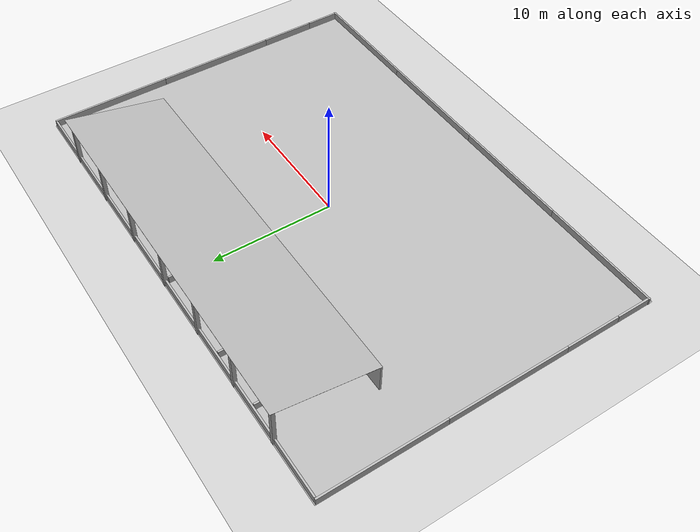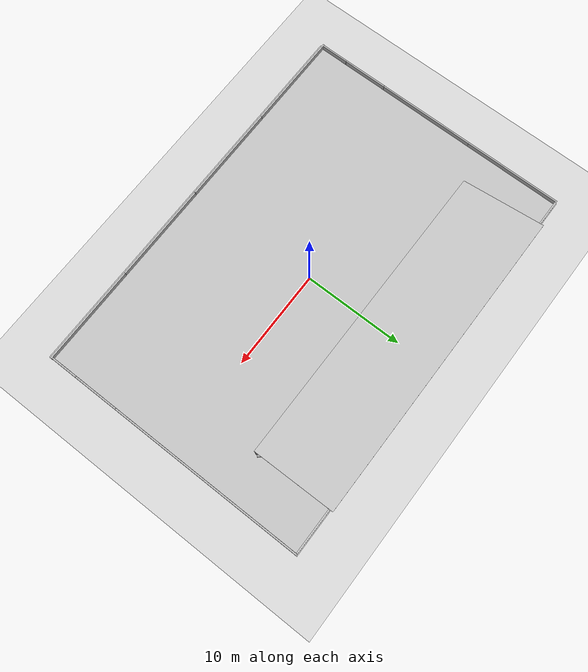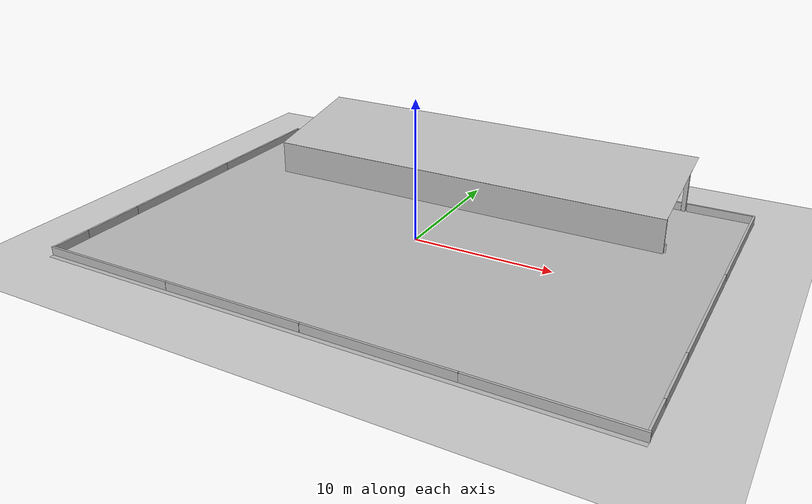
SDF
<sdf version='1.6'>
  <world name='tunnel'>
    <scene>
      <shadows>0</shadows>
      <ambient>0.8 0.8 0.8 1</ambient>
      <background>1 1 1 1</background>
      <grid>0</grid>
      <origin_visual>0</origin_visual>
    </scene>
    <physics name='default_physics' default='0' type='ode'>
      <max_step_size>0.001</max_step_size>
      <real_time_factor>1</real_time_factor>
      <real_time_update_rate>500</real_time_update_rate>
    </physics>
    <gui fullscreen='0'>
      <camera name='world_camera'>
        <pose frame=''>31.8138 22.9077 11.374 0 0.407642 -2.57099</pose>
        <view_controller>orbit</view_controller>
        <projection_type>perspective</projection_type>
      </camera>
    </gui>
    <gravity>0 0 -9.8</gravity>
    <magnetic_field>6e-06 2.3e-05 -4.2e-05</magnetic_field>
    <atmosphere type='adiabatic'/>
    <audio>
      <device>default</device>
    </audio>
    <wind/>
    <spherical_coordinates>
      <surface_model>EARTH_WGS84</surface_model>
      <latitude_deg>0</latitude_deg>
      <longitude_deg>0</longitude_deg>
      <elevation>0</elevation>
      <heading_deg>0</heading_deg>
    </spherical_coordinates>
    <model name='ground_plane'>
      <static>1</static>
      <link name='link'>
        <collision name='collision'>
          <geometry>
            <plane>
              <normal>0 0 1</normal>
              <size>50 50</size>
            </plane>
          </geometry>
          <surface>
            <friction>
              <ode>
                <mu>100</mu>
                <mu2>50</mu2>
              </ode>
              <torsional>
                <ode/>
              </torsional>
            </friction>
            <bounce/>
            <contact>
              <ode/>
            </contact>
          </surface>
          <max_contacts>10</max_contacts>
        </collision>
        <visual name='visual'>
          <cast_shadows>0</cast_shadows>
          <geometry>
            <plane>
              <normal>0 0 1</normal>
              <size>100 100</size>
            </plane>
          </geometry>
          <material>
            <script>
              <name>Gazebo/Grey</name>
              <uri>file://media/materials/scripts/gazebo.material</uri>
            </script>
          </material>
        </visual>
        <velocity_decay>
          <linear>0</linear>
          <angular>0</angular>
        </velocity_decay>
        <self_collide>0</self_collide>
        <kinematic>0</kinematic>
        <gravity>1</gravity>
        <enable_wind>0</enable_wind>
      </link>
    </model>
    <model name='ground'>
      <static>1</static>
      <link name='link'>
        <visual name='visual'>
          <pose frame=''>0 0 0 0 -0 0</pose>
          <geometry>
            <mesh>
              <uri>model://tunnel/meshes/ground.dae</uri>
            </mesh>
          </geometry>
        </visual>
        <self_collide>0</self_collide>
        <enable_wind>0</enable_wind>
        <kinematic>0</kinematic>
      </link>
      <pose frame=''>0 0 0 0 -0 0</pose>
    </model>
    <include>
     <uri>model://tunnel</uri>
      <pose>0 0 0.0 0 0 0</pose>
    </include>
  </world>
</sdf>

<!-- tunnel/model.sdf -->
<sdf version="1.5">
 <model name='tunnel'>
      <static>1</static>
      <link name='upright_0'>
      <pose frame=''>-15 13.85 0 0 -0 0</pose>
        <collision name='upright_01'>
          <pose frame=''>-0 0 2 0 -0 0</pose>
          <geometry>
            <box>
              <size>0.3 0.3 4</size>
            </box>
          </geometry>
          <max_contacts>10</max_contacts>
          <surface>
            <contact>
              <ode/>
            </contact>
            <bounce/>
            <friction>
              <torsional>
                <ode/>
              </torsional>
              <ode/>
            </friction>
          </surface>
        </collision>
        <visual name='visual'>
          <geometry>
            <mesh>
              <uri>model://tunnel/meshes/upright.dae</uri>
            </mesh>
          </geometry>
        </visual>
        <self_collide>0</self_collide>
        <enable_wind>0</enable_wind>
        <kinematic>0</kinematic>
      </link>
      <link name='upright_1'>
      <pose frame=''>-10 13.85 0 0 -0 0</pose>
        <collision name='upright_01'>
          <pose frame=''>-0 0 2 0 -0 0</pose>
          <geometry>
            <box>
              <size>0.3 0.3 4</size>
            </box>
          </geometry>
          <max_contacts>10</max_contacts>
          <surface>
            <contact>
              <ode/>
            </contact>
            <bounce/>
            <friction>
              <torsional>
                <ode/>
              </torsional>
              <ode/>
            </friction>
          </surface>
        </collision>
        <visual name='visual'>
          <geometry>
            <mesh>
              <uri>model://tunnel/meshes/upright.dae</uri>
            </mesh>
          </geometry>
        </visual>
        <self_collide>0</self_collide>
        <enable_wind>0</enable_wind>
        <kinematic>0</kinematic>
      </link>
      <link name='upright_2'>
      <pose frame=''>-5 13.85 0 0 -0 0</pose>
        <collision name='upright_01'>
          <pose frame=''>-0 0 2 0 -0 0</pose>
          <geometry>
            <box>
              <size>0.3 0.3 4</size>
            </box>
          </geometry>
          <max_contacts>10</max_contacts>
          <surface>
            <contact>
              <ode/>
            </contact>
            <bounce/>
            <friction>
              <torsional>
                <ode/>
              </torsional>
              <ode/>
            </friction>
          </surface>
        </collision>
        <visual name='visual'>
          <geometry>
            <mesh>
              <uri>model://tunnel/meshes/upright.dae</uri>
            </mesh>
          </geometry>
        </visual>
        <self_collide>0</self_collide>
        <enable_wind>0</enable_wind>
        <kinematic>0</kinematic>
      </link>
      <link name='upright_3'>
      <pose frame=''>0 13.85 0 0 -0 0</pose>
        <collision name='upright_01'>
          <pose frame=''>-0 0 2 0 -0 0</pose>
          <geometry>
            <box>
              <size>0.3 0.3 4</size>
            </box>
          </geometry>
          <max_contacts>10</max_contacts>
          <surface>
            <contact>
              <ode/>
            </contact>
            <bounce/>
            <friction>
              <torsional>
                <ode/>
              </torsional>
              <ode/>
            </friction>
          </surface>
        </collision>
        <visual name='visual'>
          <geometry>
            <mesh>
              <uri>model://tunnel/meshes/upright.dae</uri>
            </mesh>
          </geometry>
        </visual>
        <self_collide>0</self_collide>
        <enable_wind>0</enable_wind>
        <kinematic>0</kinematic>
      </link>
      <link name='upright_4'>
        <pose frame=''>5 13.85 0 0 -0 0</pose>
        <collision name='upright_01'>
          <pose frame=''>-0 0 2 0 -0 0</pose>
          <geometry>
            <box>
              <size>0.3 0.3 4</size>
            </box>
          </geometry>
          <max_contacts>10</max_contacts>
          <surface>
            <contact>
              <ode/>
            </contact>
            <bounce/>
            <friction>
              <torsional>
                <ode/>
              </torsional>
              <ode/>
            </friction>
          </surface>
        </collision>
        <visual name='visual'>
          <geometry>
            <mesh>
              <uri>model://tunnel/meshes/upright.dae</uri>
            </mesh>
          </geometry>
        </visual>
        <self_collide>0</self_collide>
        <enable_wind>0</enable_wind>
        <kinematic>0</kinematic>
      </link>
      <link name='upright_5'>
        <pose frame=''>10 13.85 0 0 -0 0</pose>
        <collision name='upright_01'>
          <pose frame=''>-0 0 2 0 -0 0</pose>
          <geometry>
            <box>
              <size>0.3 0.3 4</size>
            </box>
          </geometry>
          <max_contacts>10</max_contacts>
          <surface>
            <contact>
              <ode/>
            </contact>
            <bounce/>
            <friction>
              <torsional>
                <ode/>
              </torsional>
              <ode/>
            </friction>
          </surface>
        </collision>
        <visual name='visual'>
          <geometry>
            <mesh>
              <uri>model://tunnel/meshes/upright.dae</uri>
            </mesh>
          </geometry>
        </visual>
        <self_collide>0</self_collide>
        <enable_wind>0</enable_wind>
        <kinematic>0</kinematic>
      </link>
      <link name='upright_6'>
      <pose frame=''>15 13.85 0 0 -0 0</pose>
        <collision name='upright_01'>
          <pose frame=''>-0 0 2 0 -0 0</pose>
          <geometry>
            <box>
              <size>0.3 0.3 4</size>
            </box>
          </geometry>
          <max_contacts>10</max_contacts>
          <surface>
            <contact>
              <ode/>
            </contact>
            <bounce/>
            <friction>
              <torsional>
                <ode/>
              </torsional>
              <ode/>
            </friction>
          </surface>
        </collision>
        <visual name='visual'>
          <geometry>
            <mesh>
              <uri>model://tunnel/meshes/upright.dae</uri>
            </mesh>
          </geometry>
        </visual>
        <self_collide>0</self_collide>
        <enable_wind>0</enable_wind>
        <kinematic>0</kinematic>
      </link>
      <link name='wall'>
        <pose frame=''>0 6.1 0 0 -0 0</pose>
        <collision name='wall_01'>
          <pose frame=''>-0 0 1.25 0 -0 0</pose>
          <geometry>
            <box>
              <size>31 0.15 2.5</size>
            </box>
          </geometry>
          <max_contacts>10</max_contacts>
          <surface>
            <contact>
              <ode/>
            </contact>
            <bounce/>
            <friction>
              <torsional>
                <ode/>
              </torsional>
              <ode/>
            </friction>
          </surface>
        </collision>
        <collision name='collision_roof_0'>
          <pose frame=''>0 4.025 3.32 0.195 -0 0</pose>
          <geometry>
            <box>
              <size>31 8.4 0.01</size>
            </box>
          </geometry>
          <max_contacts>10</max_contacts>
          <surface>
            <contact>
              <ode/>
            </contact>
            <bounce/>
            <friction>
              <torsional>
                <ode/>
              </torsional>
              <ode/>
            </friction>
          </surface>
        </collision>
        <visual name='visual'>
          <geometry>
            <mesh>
              <uri>model://tunnel/meshes/wall.dae</uri>
            </mesh>
          </geometry>
        </visual>
        <visual name='visual_roof_0'>
          <pose frame=''>0 4.025 3.32 0.195 -0 0</pose>
          <geometry>
            <box>
              <size>31 8.4 0.01</size>
            </box>
          </geometry>
          <material>
            <script>
              <uri>model://tunnel/materials/scripts</uri>
              <uri>model://tunnel/materials/textures</uri>
              <name>wall/Roof</name>
            </script>
          </material>
        </visual>
        <self_collide>0</self_collide>
        <enable_wind>0</enable_wind>
        <kinematic>0</kinematic>
      </link>
      <link name='concrete_barrier_l_1'>
      <pose frame=''>12.5 13.85 0 0 -0 0</pose>
        <collision name='concrete_barrier_l_01'>
          <pose frame=''>-0 0 0.3 0 -0 0</pose>
          <geometry>
            <box>
              <size>4.6 0.15 0.6</size>
            </box>
          </geometry>
          <max_contacts>10</max_contacts>
          <surface>
            <contact>
              <ode/>
            </contact>
            <bounce/>
            <friction>
              <torsional>
                <ode/>
              </torsional>
              <ode/>
            </friction>
          </surface>
        </collision>
        <visual name='visual'>
          <geometry>
            <mesh>
              <uri>model://tunnel/meshes/concrete_barrier_l.dae</uri>
            </mesh>
          </geometry>
        </visual>
        <self_collide>0</self_collide>
        <enable_wind>0</enable_wind>
        <kinematic>0</kinematic>
      </link>
      <link name='concrete_barrier_l_2'>
      <pose frame=''>7.5 13.85 0 0 -0 0</pose>
        <collision name='concrete_barrier_l_01'>
          <pose frame=''>-0 0 0.3 0 -0 0</pose>
          <geometry>
            <box>
              <size>4.6 0.15 0.6</size>
            </box>
          </geometry>
          <max_contacts>10</max_contacts>
          <surface>
            <contact>
              <ode/>
            </contact>
            <bounce/>
            <friction>
              <torsional>
                <ode/>
              </torsional>
              <ode/>
            </friction>
          </surface>
        </collision>
        <visual name='visual'>
          <geometry>
            <mesh>
              <uri>model://tunnel/meshes/concrete_barrier_l.dae</uri>
            </mesh>
          </geometry>
        </visual>
        <self_collide>0</self_collide>
        <enable_wind>0</enable_wind>
        <kinematic>0</kinematic>
      </link>
      <link name='concrete_barrier_l_3'>
      <pose frame=''>2.5 13.85 0 0 -0 0</pose>
        <collision name='concrete_barrier_l_01'>
          <pose frame=''>-0 0 0.3 0 -0 0</pose>
          <geometry>
            <box>
              <size>4.6 0.15 0.6</size>
            </box>
          </geometry>
          <max_contacts>10</max_contacts>
          <surface>
            <contact>
              <ode/>
            </contact>
            <bounce/>
            <friction>
              <torsional>
                <ode/>
              </torsional>
              <ode/>
            </friction>
          </surface>
        </collision>
        <visual name='visual'>
          <geometry>
            <mesh>
              <uri>model://tunnel/meshes/concrete_barrier_l.dae</uri>
            </mesh>
          </geometry>
        </visual>
        <self_collide>0</self_collide>
        <enable_wind>0</enable_wind>
        <kinematic>0</kinematic>
      </link>
      <link name='concrete_barrier_l_4'>
      <pose frame=''>-2.5 13.85 0 0 -0 0</pose>
        <collision name='concrete_barrier_l_01'>
          <pose frame=''>-0 0 0.3 0 -0 0</pose>
          <geometry>
            <box>
              <size>4.6 0.15 0.6</size>
            </box>
          </geometry>
          <max_contacts>10</max_contacts>
          <surface>
            <contact>
              <ode/>
            </contact>
            <bounce/>
            <friction>
              <torsional>
                <ode/>
              </torsional>
              <ode/>
            </friction>
          </surface>
        </collision>
        <visual name='visual'>
          <geometry>
            <mesh>
              <uri>model://tunnel/meshes/concrete_barrier_l.dae</uri>
            </mesh>
          </geometry>
        </visual>
        <self_collide>0</self_collide>
        <enable_wind>0</enable_wind>
        <kinematic>0</kinematic>
      </link>
      <link name='concrete_barrier_l_5'>
      <pose frame=''>-7.5 13.85 0 0 -0 0</pose>
        <collision name='concrete_barrier_l_01'>
          <pose frame=''>-0 0 0.3 0 -0 0</pose>
          <geometry>
            <box>
              <size>4.6 0.15 0.6</size>
            </box>
          </geometry>
          <max_contacts>10</max_contacts>
          <surface>
            <contact>
              <ode/>
            </contact>
            <bounce/>
            <friction>
              <torsional>
                <ode/>
              </torsional>
              <ode/>
            </friction>
          </surface>
        </collision>
        <visual name='visual'>
          <geometry>
            <mesh>
              <uri>model://tunnel/meshes/concrete_barrier_l.dae</uri>
            </mesh>
          </geometry>
        </visual>
        <self_collide>0</self_collide>
        <enable_wind>0</enable_wind>
        <kinematic>0</kinematic>
      </link>
      <link name='concrete_barrier_l_6'>
      <pose frame=''>-12.5 13.85 0 0 -0 0</pose>
        <collision name='concrete_barrier_l_01'>
          <pose frame=''>-0 0 0.3 0 -0 0</pose>
          <geometry>
            <box>
              <size>4.6 0.15 0.6</size>
            </box>
          </geometry>
          <max_contacts>10</max_contacts>
          <surface>
            <contact>
              <ode/>
            </contact>
            <bounce/>
            <friction>
              <torsional>
                <ode/>
              </torsional>
              <ode/>
            </friction>
          </surface>
        </collision>
        <visual name='visual'>
          <geometry>
            <mesh>
              <uri>model://tunnel/meshes/concrete_barrier_l.dae</uri>
            </mesh>
          </geometry>
        </visual>
        <self_collide>0</self_collide>
        <enable_wind>0</enable_wind>
        <kinematic>0</kinematic>
      </link>
      <link name='concrete_barrier_m_1'>
      <pose frame=''>14.689 7.315 0 0 -0 2.246</pose>
        <collision name='concrete_barrier_m_01'>
          <pose frame=''>-0 0 0.3 0 -0 0</pose>
          <geometry>
            <box>
              <size>2.8 0.15 0.6</size>
            </box>
          </geometry>
          <max_contacts>10</max_contacts>
          <surface>
            <contact>
              <ode/>
            </contact>
            <bounce/>
            <friction>
              <torsional>
                <ode/>
              </torsional>
              <ode/>
            </friction>
          </surface>
        </collision>
        <visual name='visual'>
          <geometry>
            <mesh>
              <uri>model://tunnel/meshes/concrete_barrier_m.dae</uri>
            </mesh>
          </geometry>
        </visual>
        <self_collide>0</self_collide>
        <enable_wind>0</enable_wind>
        <kinematic>0</kinematic>
      </link>
      <link name='concrete_barrier_m_2'>
      <pose frame=''>12.94 9.5 0 0 -0 2.246</pose>
        <collision name='concrete_barrier_m_01'>
          <pose frame=''>-0 0 0.3 0 -0 0</pose>
          <geometry>
            <box>
              <size>2.8 0.15 0.6</size>
            </box>
          </geometry>
          <max_contacts>10</max_contacts>
          <surface>
            <contact>
              <ode/>
            </contact>
            <bounce/>
            <friction>
              <torsional>
                <ode/>
              </torsional>
              <ode/>
            </friction>
          </surface>
        </collision>
        <visual name='visual'>
          <geometry>
            <mesh>
              <uri>model://tunnel/meshes/concrete_barrier_m.dae</uri>
            </mesh>
          </geometry>
        </visual>
        <self_collide>0</self_collide>
        <enable_wind>0</enable_wind>
        <kinematic>0</kinematic>
      </link>
      <link name='round_concrete_base_1'>
      <pose frame=''>4 9.95 0 0 -0 0</pose>
        <collision name='round_concrete_base_01'>
          <pose frame=''>-0 0 0.3 0 -0 0</pose>
          <geometry>
            <cylinder>
              <radius>0.8</radius>
              <length>0.6</length>
            </cylinder>
          </geometry>
          <max_contacts>10</max_contacts>
          <surface>
            <contact>
              <ode/>
            </contact>
            <bounce/>
            <friction>
              <torsional>
                <ode/>
              </torsional>
              <ode/>
            </friction>
          </surface>
        </collision>
        <visual name='visual'>
          <geometry>
            <mesh>
              <uri>model://tunnel/meshes/round_concrete_base.dae</uri>
            </mesh>
          </geometry>
        </visual>
        <self_collide>0</self_collide>
        <enable_wind>0</enable_wind>
        <kinematic>0</kinematic>
      </link>
      <link name='concrete_barrier_m_3'>
      <pose frame=''>4 7.75 0 0 -0 1.57675</pose>
        <collision name='concrete_barrier_m_01'>
          <pose frame=''>-0 0 0.3 0 -0 0</pose>
          <geometry>
            <box>
              <size>2.8 0.15 0.6</size>
            </box>
          </geometry>
          <max_contacts>10</max_contacts>
          <surface>
            <contact>
              <ode/>
            </contact>
            <bounce/>
            <friction>
              <torsional>
                <ode/>
              </torsional>
              <ode/>
            </friction>
          </surface>
        </collision>
        <visual name='visual'>
          <geometry>
            <mesh>
              <uri>model://tunnel/meshes/concrete_barrier_m.dae</uri>
            </mesh>
          </geometry>
        </visual>
        <self_collide>0</self_collide>
        <enable_wind>0</enable_wind>
        <kinematic>0</kinematic>
      </link>
      <link name='round_concrete_base_2'>
      <pose frame=''>0 9.95 0 0 -0 0</pose>
        <collision name='round_concrete_base_01'>
          <pose frame=''>-0 0 0.3 0 -0 0</pose>
          <geometry>
            <cylinder>
              <radius>0.8</radius>
              <length>0.6</length>
            </cylinder>
          </geometry>
          <max_contacts>10</max_contacts>
          <surface>
            <contact>
              <ode/>
            </contact>
            <bounce/>
            <friction>
              <torsional>
                <ode/>
              </torsional>
              <ode/>
            </friction>
          </surface>
        </collision>
        <visual name='visual'>
          <geometry>
            <mesh>
              <uri>model://tunnel/meshes/round_concrete_base.dae</uri>
            </mesh>
          </geometry>
        </visual>
        <self_collide>0</self_collide>
        <enable_wind>0</enable_wind>
        <kinematic>0</kinematic>
      </link>
      <link name='concrete_barrier_m_4'>
      <pose frame=''>0 12.2 0 0 -0 1.57675</pose>
        <collision name='concrete_barrier_m_01'>
          <pose frame=''>-0 0 0.3 0 -0 0</pose>
          <geometry>
            <box>
              <size>2.8 0.15 0.6</size>
            </box>
          </geometry>
          <max_contacts>10</max_contacts>
          <surface>
            <contact>
              <ode/>
            </contact>
            <bounce/>
            <friction>
              <torsional>
                <ode/>
              </torsional>
              <ode/>
            </friction>
          </surface>
        </collision>
        <visual name='visual'>
          <geometry>
            <mesh>
              <uri>model://tunnel/meshes/concrete_barrier_m.dae</uri>
            </mesh>
          </geometry>
        </visual>
        <self_collide>0</self_collide>
        <enable_wind>0</enable_wind>
        <kinematic>0</kinematic>
      </link>
      <link name='concrete_barrier_m_5'>
      <pose frame=''>-7.54 12.325 0 0 -0 1.57675</pose>
        <collision name='concrete_barrier_m_01'>
          <pose frame=''>-0 0 0.3 0 -0 0</pose>
          <geometry>
            <box>
              <size>2.8 0.15 0.6</size>
            </box>
          </geometry>
          <max_contacts>10</max_contacts>
          <surface>
            <contact>
              <ode/>
            </contact>
            <bounce/>
            <friction>
              <torsional>
                <ode/>
              </torsional>
              <ode/>
            </friction>
          </surface>
        </collision>
        <visual name='visual'>
          <geometry>
            <mesh>
              <uri>model://tunnel/meshes/concrete_barrier_m.dae</uri>
            </mesh>
          </geometry>
        </visual>
        <self_collide>0</self_collide>
        <enable_wind>0</enable_wind>
        <kinematic>0</kinematic>
      </link>
      <link name='concrete_barrier_l_7'>
        <pose frame=''>-9.91 11 0 0 -0 0</pose>
        <collision name='concrete_barrier_l_01'>
          <pose frame=''>-0 0 0.3 0 -0 0</pose>
          <geometry>
            <box>
              <size>4.6 0.15 0.6</size>
            </box>
          </geometry>
          <max_contacts>10</max_contacts>
          <surface>
            <contact>
              <ode/>
            </contact>
            <bounce/>
            <friction>
              <torsional>
                <ode/>
              </torsional>
              <ode/>
            </friction>
          </surface>
        </collision>
        <visual name='visual'>
          <geometry>
            <mesh>
              <uri>model://tunnel/meshes/concrete_barrier_l.dae</uri>
            </mesh>
          </geometry>
        </visual>
        <self_collide>0</self_collide>
        <enable_wind>0</enable_wind>
        <kinematic>0</kinematic>
      </link>
      <link name='concrete_barrier_m_6'>
      <pose frame=''>-12.3 12.325 0 0 -0 1.57675</pose>
        <collision name='concrete_barrier_m_01'>
          <pose frame=''>-0 0 0.3 0 -0 0</pose>
          <geometry>
            <box>
              <size>2.8 0.15 0.6</size>
            </box>
          </geometry>
          <max_contacts>10</max_contacts>
          <surface>
            <contact>
              <ode/>
            </contact>
            <bounce/>
            <friction>
              <torsional>
                <ode/>
              </torsional>
              <ode/>
            </friction>
          </surface>
        </collision>
        <visual name='visual'>
          <geometry>
            <mesh>
              <uri>model://tunnel/meshes/concrete_barrier_m.dae</uri>
            </mesh>
          </geometry>
        </visual>
        <self_collide>0</self_collide>
        <enable_wind>0</enable_wind>
        <kinematic>0</kinematic>
      </link>
      <link name='concrete_barrier_m_7'>
      <pose frame=''>-2.95 7.25 0 0 0 -0.7854</pose>
        <collision name='concrete_barrier_m_01'>
          <pose frame=''>-0 0 0.3 0 -0 0</pose>
          <geometry>
            <box>
              <size>2.8 0.15 0.6</size>
            </box>
          </geometry>
          <max_contacts>10</max_contacts>
          <surface>
            <contact>
              <ode/>
            </contact>
            <bounce/>
            <friction>
              <torsional>
                <ode/>
              </torsional>
              <ode/>
            </friction>
          </surface>
        </collision>
        <visual name='visual'>
          <geometry>
            <mesh>
              <uri>model://tunnel/meshes/concrete_barrier_m.dae</uri>
            </mesh>
          </geometry>
        </visual>
        <self_collide>0</self_collide>
        <enable_wind>0</enable_wind>
        <kinematic>0</kinematic>
      </link>
      <link name='concrete_barrier_m_8'>
      <pose frame=''>-5.05 7.25 0 0 -0 0.7854</pose>
        <collision name='concrete_barrier_m_01'>
          <pose frame=''>-0 0 0.3 0 -0 0</pose>
          <geometry>
            <box>
              <size>2.8 0.15 0.6</size>
            </box>
          </geometry>
          <max_contacts>10</max_contacts>
          <surface>
            <contact>
              <ode/>
            </contact>
            <bounce/>
            <friction>
              <torsional>
                <ode/>
              </torsional>
              <ode/>
            </friction>
          </surface>
        </collision>
        <visual name='visual'>
          <geometry>
            <mesh>
              <uri>model://tunnel/meshes/concrete_barrier_m.dae</uri>
            </mesh>
          </geometry>
        </visual>
        <self_collide>0</self_collide>
        <enable_wind>0</enable_wind>
        <kinematic>0</kinematic>
      </link>

      <link name='concrete_barrier_l_0'>
       <pose>17.5 13.85 0.0 0 0 0</pose>
        <collision name='concrete_barrier_l_00'>
          <pose frame=''>-0 0 0.3 0 -0 0</pose>
          <geometry>
            <box>
              <size>4.6 0.15 0.6</size>
            </box>
          </geometry>
          <max_contacts>10</max_contacts>
          <surface>
            <contact>
              <ode/>
            </contact>
            <bounce/>
            <friction>
              <torsional>
                <ode/>
              </torsional>
              <ode/>
            </friction>
          </surface>
        </collision>
        <visual name='visual'>
          <geometry>
            <mesh>
              <uri>model://tunnel/meshes/concrete_barrier_l.dae</uri>
            </mesh>
          </geometry>
        </visual>
        <self_collide>0</self_collide>
        <enable_wind>0</enable_wind>
        <kinematic>0</kinematic>
      </link>

     <link name='concrete_barrier_l_8'>
       <pose>-17.5 13.85 0.0 0 0 0</pose>
        <collision name='concrete_barrier_l_08'>
          <pose frame=''>-0 0 0.3 0 -0 0</pose>
          <geometry>
            <box>
              <size>4.6 0.15 0.6</size>
            </box>
          </geometry>
          <max_contacts>10</max_contacts>
          <surface>
            <contact>
              <ode/>
            </contact>
            <bounce/>
            <friction>
              <torsional>
                <ode/>
              </torsional>
              <ode/>
            </friction>
          </surface>
        </collision>
        <visual name='visual'>
          <geometry>
            <mesh>
              <uri>model://tunnel/meshes/concrete_barrier_l.dae</uri>
            </mesh>
          </geometry>
        </visual>
        <self_collide>0</self_collide>
        <enable_wind>0</enable_wind>
        <kinematic>0</kinematic>
      </link>

    <!-- side -->
    <link name='concrete_barrier_xl_1'>
       <pose>19.9 8.92 0.0 0 0 1.5708</pose>
        <collision name='concrete_barrier_xl_01'>
          <pose frame=''>-0 0 0.3 0 -0 0</pose>
          <geometry>
            <box>
              <size>10 0.15 0.6</size>
            </box>
          </geometry>
          <max_contacts>10</max_contacts>
          <surface>
            <contact>
              <ode/>
            </contact>
            <bounce/>
            <friction>
              <torsional>
                <ode/>
              </torsional>
              <ode/>
            </friction>
          </surface>
        </collision>
        <visual name='visual'>
          <geometry>
            <mesh>
              <uri>model://tunnel/meshes/concrete_barrier_xl.dae</uri>
            </mesh>
          </geometry>
        </visual>
        <self_collide>0</self_collide>
        <enable_wind>0</enable_wind>
        <kinematic>0</kinematic>
      </link>

     <link name='concrete_barrier_xl_2'>
       <pose>19.9 -1.09 0.0 0 0 1.5708</pose>
        <collision name='concrete_barrier_xl_02'>
          <pose frame=''>-0 0 0.3 0 -0 0</pose>
          <geometry>
            <box>
              <size>10 0.15 0.6</size>
            </box>
          </geometry>
          <max_contacts>10</max_contacts>
          <surface>
            <contact>
              <ode/>
            </contact>
            <bounce/>
            <friction>
              <torsional>
                <ode/>
              </torsional>
              <ode/>
            </friction>
          </surface>
        </collision>
        <visual name='visual'>
          <geometry>
            <mesh>
              <uri>model://tunnel/meshes/concrete_barrier_xl.dae</uri>
            </mesh>
          </geometry>
        </visual>
        <self_collide>0</self_collide>
        <enable_wind>0</enable_wind>
        <kinematic>0</kinematic>
      </link>

    <link name='concrete_barrier_l_10'>
       <pose>19.9 -8.4 0.0 0 0 1.5708</pose>
        <collision name='concrete_barrier_l_10'>
          <pose frame=''>-0 0 0.3 0 -0 0</pose>
          <geometry>
            <box>
              <size>4.6 0.15 0.6</size>
            </box>
          </geometry>
          <max_contacts>10</max_contacts>
          <surface>
            <contact>
              <ode/>
            </contact>
            <bounce/>
            <friction>
              <torsional>
                <ode/>
              </torsional>
              <ode/>
            </friction>
          </surface>
        </collision>
        <visual name='visual'>
          <geometry>
            <mesh>
              <uri>model://tunnel/meshes/concrete_barrier_l.dae</uri>
            </mesh>
          </geometry>
        </visual>
        <self_collide>0</self_collide>
        <enable_wind>0</enable_wind>
        <kinematic>0</kinematic>
      </link>

    <link name='concrete_barrier_m_9'>
      <pose>19.9 -12.12 0.0 0 0 1.5708</pose>se>
        <collision name='concrete_barrier_m_09'>
          <pose frame=''>-0 0 0.3 0 -0 0</pose>
          <geometry>
            <box>
              <size>2.8 0.15 0.6</size>
            </box>
          </geometry>
          <max_contacts>10</max_contacts>
          <surface>
            <contact>
              <ode/>
            </contact>
            <bounce/>
            <friction>
              <torsional>
                <ode/>
              </torsional>
              <ode/>
            </friction>
          </surface>
        </collision>
        <visual name='visual'>
          <geometry>
            <mesh>
              <uri>model://tunnel/meshes/concrete_barrier_m.dae</uri>
            </mesh>
          </geometry>
        </visual>
        <self_collide>0</self_collide>
        <enable_wind>0</enable_wind>
        <kinematic>0</kinematic>
      </link>

    <!-- side -->
    <link name='concrete_barrier_xl_3'>
      <pose>-19.9 8.92 0.0 0 0 1.5708</pose>
        <collision name='concrete_barrier_xl_03'>
          <pose frame=''>-0 0 0.3 0 -0 0</pose>
          <geometry>
            <box>
              <size>10 0.15 0.6</size>
            </box>
          </geometry>
          <max_contacts>10</max_contacts>
          <surface>
            <contact>
              <ode/>
            </contact>
            <bounce/>
            <friction>
              <torsional>
                <ode/>
              </torsional>
              <ode/>
            </friction>
          </surface>
        </collision>
        <visual name='visual'>
          <geometry>
            <mesh>
              <uri>model://tunnel/meshes/concrete_barrier_xl.dae</uri>
            </mesh>
          </geometry>
        </visual>
        <self_collide>0</self_collide>
        <enable_wind>0</enable_wind>
        <kinematic>0</kinematic>
      </link>

     <link name='concrete_barrier_xl_4'>
       <pose>-19.9 -1.09 0.0 0 0 1.5708</pose>
        <collision name='concrete_barrier_xl_04'>
          <pose frame=''>-0 0 0.3 0 -0 0</pose>
          <geometry>
            <box>
              <size>10 0.15 0.6</size>
            </box>
          </geometry>
          <max_contacts>10</max_contacts>
          <surface>
            <contact>
              <ode/>
            </contact>
            <bounce/>
            <friction>
              <torsional>
                <ode/>
              </torsional>
              <ode/>
            </friction>
          </surface>
        </collision>
        <visual name='visual'>
          <geometry>
            <mesh>
              <uri>model://tunnel/meshes/concrete_barrier_xl.dae</uri>
            </mesh>
          </geometry>
        </visual>
        <self_collide>0</self_collide>
        <enable_wind>0</enable_wind>
        <kinematic>0</kinematic>
      </link>

    <link name='concrete_barrier_l_11'>
       <pose>-19.9 -8.4 0.0 0 0 1.5708</pose>
        <collision name='concrete_barrier_l_11'>
          <pose frame=''>-0 0 0.3 0 -0 0</pose>
          <geometry>
            <box>
              <size>4.6 0.15 0.6</size>
            </box>
          </geometry>
          <max_contacts>10</max_contacts>
          <surface>
            <contact>
              <ode/>
            </contact>
            <bounce/>
            <friction>
              <torsional>
                <ode/>
              </torsional>
              <ode/>
            </friction>
          </surface>
        </collision>
        <visual name='visual'>
          <geometry>
            <mesh>
              <uri>model://tunnel/meshes/concrete_barrier_l.dae</uri>
            </mesh>
          </geometry>
        </visual>
        <self_collide>0</self_collide>
        <enable_wind>0</enable_wind>
        <kinematic>0</kinematic>
      </link>

    <link name='concrete_barrier_m_10'>
      <pose>-19.9 -12.12 0.0 0 0 1.5708</pose>se>
        <collision name='concrete_barrier_m_10'>
          <pose frame=''>-0 0 0.3 0 -0 0</pose>
          <geometry>
            <box>
              <size>2.8 0.15 0.6</size>
            </box>
          </geometry>
          <max_contacts>10</max_contacts>
          <surface>
            <contact>
              <ode/>
            </contact>
            <bounce/>
            <friction>
              <torsional>
                <ode/>
              </torsional>
              <ode/>
            </friction>
          </surface>
        </collision>
        <visual name='visual'>
          <geometry>
            <mesh>
              <uri>model://tunnel/meshes/concrete_barrier_m.dae</uri>
            </mesh>
          </geometry>
        </visual>
        <self_collide>0</self_collide>
        <enable_wind>0</enable_wind>
        <kinematic>0</kinematic>
      </link>

    <!-- side -->
     <link name='concrete_barrier_xl_5'>
       <pose>15.02 -13.6 0.0 0 0 0</pose>
        <collision name='concrete_barrier_xl_05'>
          <pose frame=''>-0 0 0.3 0 -0 0</pose>
          <geometry>
            <box>
              <size>10 0.15 0.6</size>
            </box>
          </geometry>
          <max_contacts>10</max_contacts>
          <surface>
            <contact>
              <ode/>
            </contact>
            <bounce/>
            <friction>
              <torsional>
                <ode/>
              </torsional>
              <ode/>
            </friction>
          </surface>
        </collision>
        <visual name='visual'>
          <geometry>
            <mesh>
              <uri>model://tunnel/meshes/concrete_barrier_xl.dae</uri>
            </mesh>
          </geometry>
        </visual>
        <self_collide>0</self_collide>
        <enable_wind>0</enable_wind>
        <kinematic>0</kinematic>
      </link>

     <link name='concrete_barrier_xl_6'>
       <pose>5.01 -13.6 0.0 0 0 0</pose>
        <collision name='concrete_barrier_xl_06'>
          <pose frame=''>-0 0 0.3 0 -0 0</pose>
          <geometry>
            <box>
              <size>10 0.15 0.6</size>
            </box>
          </geometry>
          <max_contacts>10</max_contacts>
          <surface>
            <contact>
              <ode/>
            </contact>
            <bounce/>
            <friction>
              <torsional>
                <ode/>
              </torsional>
              <ode/>
            </friction>
          </surface>
        </collision>
        <visual name='visual'>
          <geometry>
            <mesh>
              <uri>model://tunnel/meshes/concrete_barrier_xl.dae</uri>
            </mesh>
          </geometry>
        </visual>
        <self_collide>0</self_collide>
        <enable_wind>0</enable_wind>
        <kinematic>0</kinematic>
      </link>

    <link name='concrete_barrier_xl_7'>
       <pose>-5.01 -13.6 0.0 0 0 0</pose>
        <collision name='concrete_barrier_xl_07'>
          <pose frame=''>-0 0 0.3 0 -0 0</pose>
          <geometry>
            <box>
              <size>10 0.15 0.6</size>
            </box>
          </geometry>
          <max_contacts>10</max_contacts>
          <surface>
            <contact>
              <ode/>
            </contact>
            <bounce/>
            <friction>
              <torsional>
                <ode/>
              </torsional>
              <ode/>
            </friction>
          </surface>
        </collision>
        <visual name='visual'>
          <geometry>
            <mesh>
              <uri>model://tunnel/meshes/concrete_barrier_xl.dae</uri>
            </mesh>
          </geometry>
        </visual>
        <self_collide>0</self_collide>
        <enable_wind>0</enable_wind>
        <kinematic>0</kinematic>
      </link>

    <link name='concrete_barrier_xl_8'>
       <pose>-15.02 -13.6 0.0 0 0 0</pose>
        <collision name='concrete_barrier_xl_08'>
          <pose frame=''>-0 0 0.3 0 -0 0</pose>
          <geometry>
            <box>
              <size>10 0.15 0.6</size>
            </box>
          </geometry>
          <max_contacts>10</max_contacts>
          <surface>
            <contact>
              <ode/>
            </contact>
            <bounce/>
            <friction>
              <torsional>
                <ode/>
              </torsional>
              <ode/>
            </friction>
          </surface>
        </collision>
        <visual name='visual'>
          <geometry>
            <mesh>
              <uri>model://tunnel/meshes/concrete_barrier_xl.dae</uri>
            </mesh>
          </geometry>
        </visual>
        <self_collide>0</self_collide>
        <enable_wind>0</enable_wind>
        <kinematic>0</kinematic>
      </link>

      </model>
</sdf>
